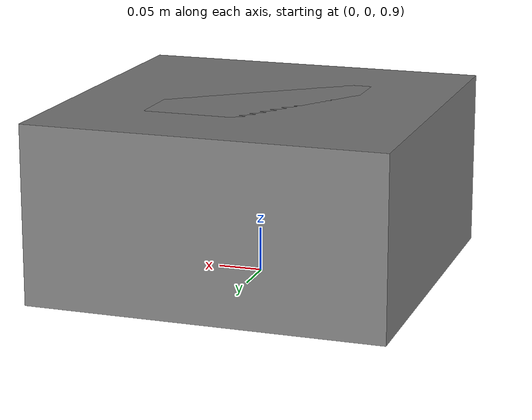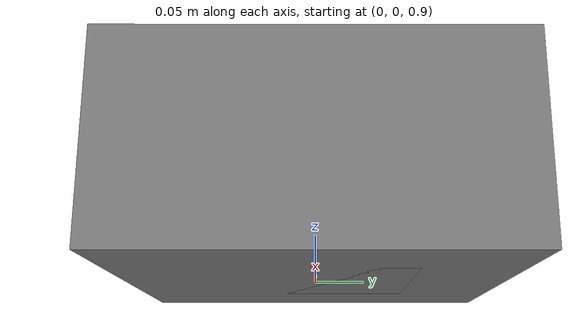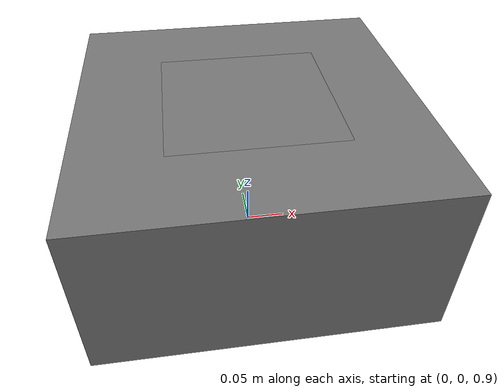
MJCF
<mujoco>
  <worldbody>
    <body name="base" pos="0 0 1">
      <freejoint name="free_joint"/>
      <geom name="base_geom" type="box" size="0.2 0.2 0.1" mass="1.0"/>
      <body name="link1" pos="0 0 0">
        <joint name="joint1" type="hinge" axis="0 0 1" range="-1.57 1.57"/>
        <geom name="link1_geom" type="box" size="0.1 0.1 0.1" mass="0.1"/>
      </body>
      <body name="link2" pos="0 0 0">
        <joint name="joint2" type="hinge" axis="0 0 1" range="-1.57 1.57"/>
        <geom name="link2_geom" type="box" size="0.1 0.1 0.1" mass="0.1"/>
      </body>
    </body>
  </worldbody>
</mujoco>
